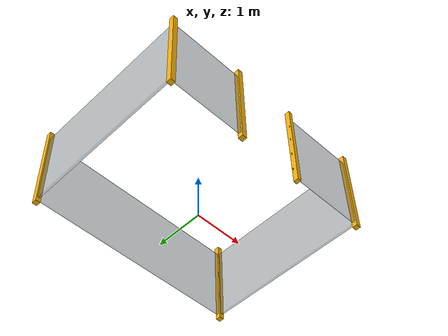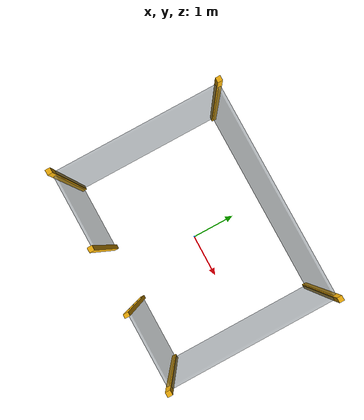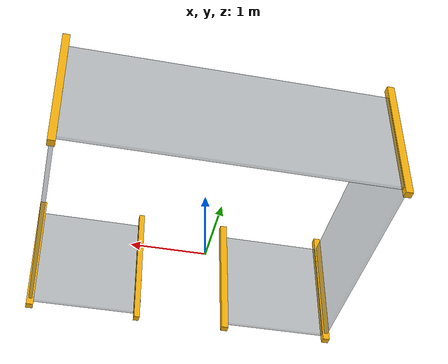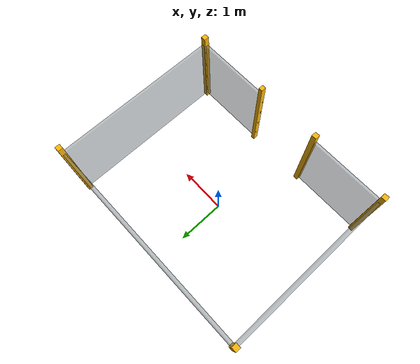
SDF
<?xml version="1.0"?>

<sdf version="1.10">

  <model name="safety_fence">

    <static>true</static>

    <link name="fence_link">

      <!-- Rear fence panel -->

      <collision name="rear_panel_collision">
        <pose>0 1.70 0.90 0 0 0</pose>

        <geometry>
          <box>
            <size>4.40 0.05 1.60</size>
          </box>
        </geometry>
      </collision>

      <visual name="rear_panel_visual">
        <pose>0 1.70 0.90 0 0 0</pose>

        <geometry>
          <box>
            <size>4.40 0.05 1.60</size>
          </box>
        </geometry>

        <transparency>0.55</transparency>

        <material>
          <ambient>0.30 0.35 0.38 1</ambient>
          <diffuse>0.40 0.45 0.48 1</diffuse>
        </material>
      </visual>

      <!-- Left fence panel -->

      <collision name="left_panel_collision">
        <pose>-2.20 0 0.90 0 0 0</pose>

        <geometry>
          <box>
            <size>0.05 3.40 1.60</size>
          </box>
        </geometry>
      </collision>

      <visual name="left_panel_visual">
        <pose>-2.20 0 0.90 0 0 0</pose>

        <geometry>
          <box>
            <size>0.05 3.40 1.60</size>
          </box>
        </geometry>

        <transparency>0.55</transparency>

        <material>
          <ambient>0.30 0.35 0.38 1</ambient>
          <diffuse>0.40 0.45 0.48 1</diffuse>
        </material>
      </visual>

      <!-- Right fence panel -->

      <collision name="right_panel_collision">
        <pose>2.20 0 0.90 0 0 0</pose>

        <geometry>
          <box>
            <size>0.05 3.40 1.60</size>
          </box>
        </geometry>
      </collision>

      <visual name="right_panel_visual">
        <pose>2.20 0 0.90 0 0 0</pose>

        <geometry>
          <box>
            <size>0.05 3.40 1.60</size>
          </box>
        </geometry>

        <transparency>0.55</transparency>

        <material>
          <ambient>0.30 0.35 0.38 1</ambient>
          <diffuse>0.40 0.45 0.48 1</diffuse>
        </material>
      </visual>

      <!-- Front-left fence section -->

      <collision name="front_left_panel_collision">
        <pose>-1.45 -1.70 0.90 0 0 0</pose>

        <geometry>
          <box>
            <size>1.50 0.05 1.60</size>
          </box>
        </geometry>
      </collision>

      <visual name="front_left_panel_visual">
        <pose>-1.45 -1.70 0.90 0 0 0</pose>

        <geometry>
          <box>
            <size>1.50 0.05 1.60</size>
          </box>
        </geometry>

        <transparency>0.55</transparency>

        <material>
          <ambient>0.30 0.35 0.38 1</ambient>
          <diffuse>0.40 0.45 0.48 1</diffuse>
        </material>
      </visual>

      <!-- Front-right fence section -->

      <collision name="front_right_panel_collision">
        <pose>1.45 -1.70 0.90 0 0 0</pose>

        <geometry>
          <box>
            <size>1.50 0.05 1.60</size>
          </box>
        </geometry>
      </collision>

      <visual name="front_right_panel_visual">
        <pose>1.45 -1.70 0.90 0 0 0</pose>

        <geometry>
          <box>
            <size>1.50 0.05 1.60</size>
          </box>
        </geometry>

        <transparency>0.55</transparency>

        <material>
          <ambient>0.30 0.35 0.38 1</ambient>
          <diffuse>0.40 0.45 0.48 1</diffuse>
        </material>
      </visual>

      <!-- Yellow structural posts -->

      <collision name="rear_left_post_collision">
        <pose>-2.20 1.70 0.95 0 0 0</pose>
        <geometry>
          <box>
            <size>0.10 0.10 1.90</size>
          </box>
        </geometry>
      </collision>

      <visual name="rear_left_post_visual">
        <pose>-2.20 1.70 0.95 0 0 0</pose>
        <geometry>
          <box>
            <size>0.10 0.10 1.90</size>
          </box>
        </geometry>
        <material>
          <ambient>0.90 0.60 0.02 1</ambient>
          <diffuse>1.00 0.72 0.04 1</diffuse>
        </material>
      </visual>

      <collision name="rear_right_post_collision">
        <pose>2.20 1.70 0.95 0 0 0</pose>
        <geometry>
          <box>
            <size>0.10 0.10 1.90</size>
          </box>
        </geometry>
      </collision>

      <visual name="rear_right_post_visual">
        <pose>2.20 1.70 0.95 0 0 0</pose>
        <geometry>
          <box>
            <size>0.10 0.10 1.90</size>
          </box>
        </geometry>
        <material>
          <ambient>0.90 0.60 0.02 1</ambient>
          <diffuse>1.00 0.72 0.04 1</diffuse>
        </material>
      </visual>

      <collision name="front_left_corner_post_collision">
        <pose>-2.20 -1.70 0.95 0 0 0</pose>
        <geometry>
          <box>
            <size>0.10 0.10 1.90</size>
          </box>
        </geometry>
      </collision>

      <visual name="front_left_corner_post_visual">
        <pose>-2.20 -1.70 0.95 0 0 0</pose>
        <geometry>
          <box>
            <size>0.10 0.10 1.90</size>
          </box>
        </geometry>
        <material>
          <ambient>0.90 0.60 0.02 1</ambient>
          <diffuse>1.00 0.72 0.04 1</diffuse>
        </material>
      </visual>

      <collision name="front_right_corner_post_collision">
        <pose>2.20 -1.70 0.95 0 0 0</pose>
        <geometry>
          <box>
            <size>0.10 0.10 1.90</size>
          </box>
        </geometry>
      </collision>

      <visual name="front_right_corner_post_visual">
        <pose>2.20 -1.70 0.95 0 0 0</pose>
        <geometry>
          <box>
            <size>0.10 0.10 1.90</size>
          </box>
        </geometry>
        <material>
          <ambient>0.90 0.60 0.02 1</ambient>
          <diffuse>1.00 0.72 0.04 1</diffuse>
        </material>
      </visual>

      <collision name="gate_left_post_collision">
        <pose>-0.65 -1.70 0.95 0 0 0</pose>
        <geometry>
          <box>
            <size>0.10 0.10 1.90</size>
          </box>
        </geometry>
      </collision>

      <visual name="gate_left_post_visual">
        <pose>-0.65 -1.70 0.95 0 0 0</pose>
        <geometry>
          <box>
            <size>0.10 0.10 1.90</size>
          </box>
        </geometry>
        <material>
          <ambient>0.90 0.60 0.02 1</ambient>
          <diffuse>1.00 0.72 0.04 1</diffuse>
        </material>
      </visual>

      <collision name="gate_right_post_collision">
        <pose>0.660 -1.70 0.95 0 0 0</pose>
        <geometry>
          <box>
            <size>0.080 0.10 1.90</size>
          </box>
        </geometry>
      </collision>

      <visual name="gate_right_post_visual">
        <pose>0.660 -1.70 0.95 0 0 0</pose>
        <geometry>
          <box>
            <size>0.080 0.10 1.90</size>
          </box>
        </geometry>
        <material>
          <ambient>0.90 0.60 0.02 1</ambient>
          <diffuse>1.00 0.72 0.04 1</diffuse>
        </material>
      </visual>

      <!-- PNP1: upper closed confirmation -->

      <visual name="pnp1_sensor_body_visual">
        <pose>0.615 -1.721 1.45 0 0 0</pose>

        <geometry>
          <box>
            <size>0.010 0.008 0.055</size>
          </box>
        </geometry>

        <material>
          <ambient>0.025 0.035 0.045 1</ambient>
          <diffuse>0.055 0.075 0.095 1</diffuse>
          <specular>0.20 0.22 0.24 1</specular>
        </material>
      </visual>

      <visual name="pnp1_sensing_face_visual">
        <pose>0.6095 -1.721 1.45 0 0 0</pose>

        <geometry>
          <box>
            <size>0.001 0.008 0.040</size>
          </box>
        </geometry>

        <material>
          <ambient>0.03 0.45 0.12 1</ambient>
          <diffuse>0.05 0.85 0.22 1</diffuse>
          <emissive>0.02 0.16 0.05 1</emissive>
        </material>
      </visual>

      <!-- PNP2: upper-middle closed confirmation -->

      <visual name="pnp2_sensor_body_visual">
        <pose>0.615 -1.707 1.10 0 0 0</pose>

        <geometry>
          <box>
            <size>0.010 0.008 0.055</size>
          </box>
        </geometry>

        <material>
          <ambient>0.025 0.035 0.045 1</ambient>
          <diffuse>0.055 0.075 0.095 1</diffuse>
          <specular>0.20 0.22 0.24 1</specular>
        </material>
      </visual>

      <visual name="pnp2_sensing_face_visual">
        <pose>0.6095 -1.707 1.10 0 0 0</pose>

        <geometry>
          <box>
            <size>0.001 0.008 0.040</size>
          </box>
        </geometry>

        <material>
          <ambient>0.03 0.45 0.12 1</ambient>
          <diffuse>0.05 0.85 0.22 1</diffuse>
          <emissive>0.02 0.16 0.05 1</emissive>
        </material>
      </visual>

      <!-- PNP3: lower-middle closed confirmation -->

      <visual name="pnp3_sensor_body_visual">
        <pose>0.615 -1.693 0.70 0 0 0</pose>

        <geometry>
          <box>
            <size>0.010 0.008 0.055</size>
          </box>
        </geometry>

        <material>
          <ambient>0.025 0.035 0.045 1</ambient>
          <diffuse>0.055 0.075 0.095 1</diffuse>
          <specular>0.20 0.22 0.24 1</specular>
        </material>
      </visual>

      <visual name="pnp3_sensing_face_visual">
        <pose>0.6095 -1.693 0.70 0 0 0</pose>

        <geometry>
          <box>
            <size>0.001 0.008 0.040</size>
          </box>
        </geometry>

        <material>
          <ambient>0.03 0.45 0.12 1</ambient>
          <diffuse>0.05 0.85 0.22 1</diffuse>
          <emissive>0.02 0.16 0.05 1</emissive>
        </material>
      </visual>

      <!-- PNP4: lower / track closed confirmation -->

      <visual name="pnp4_sensor_body_visual">
        <pose>0.615 -1.679 0.30 0 0 0</pose>

        <geometry>
          <box>
            <size>0.010 0.008 0.055</size>
          </box>
        </geometry>

        <material>
          <ambient>0.025 0.035 0.045 1</ambient>
          <diffuse>0.055 0.075 0.095 1</diffuse>
          <specular>0.20 0.22 0.24 1</specular>
        </material>
      </visual>

      <visual name="pnp4_sensing_face_visual">
        <pose>0.6095 -1.679 0.30 0 0 0</pose>

        <geometry>
          <box>
            <size>0.001 0.008 0.040</size>
          </box>
        </geometry>

        <material>
          <ambient>0.03 0.45 0.12 1</ambient>
          <diffuse>0.05 0.85 0.22 1</diffuse>
          <emissive>0.02 0.16 0.05 1</emissive>
        </material>
      </visual>

    </link>

  </model>

</sdf>
